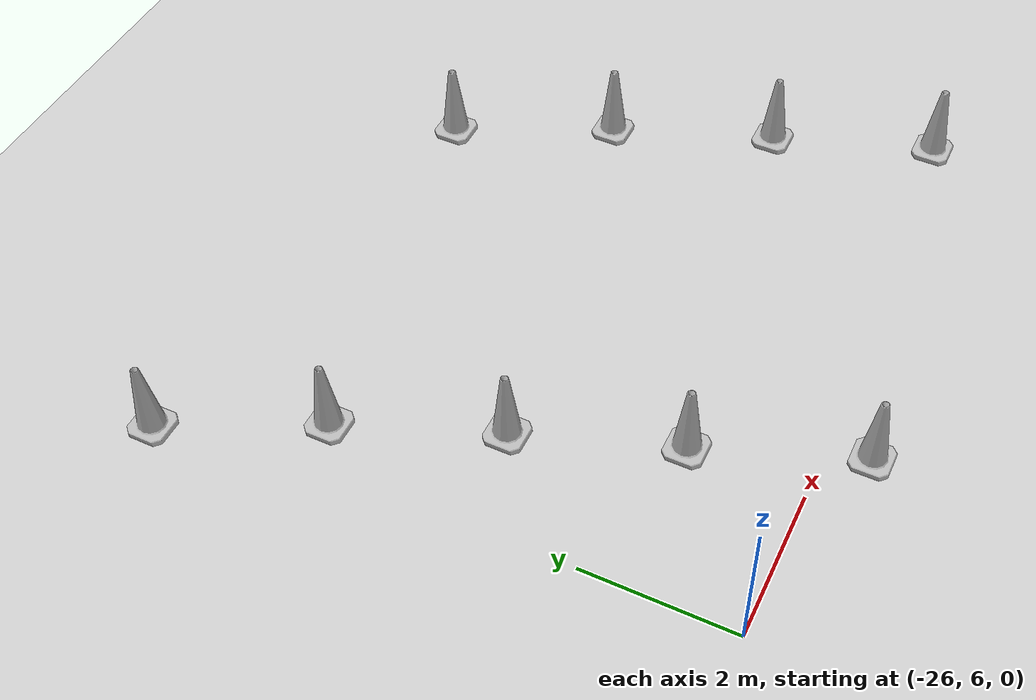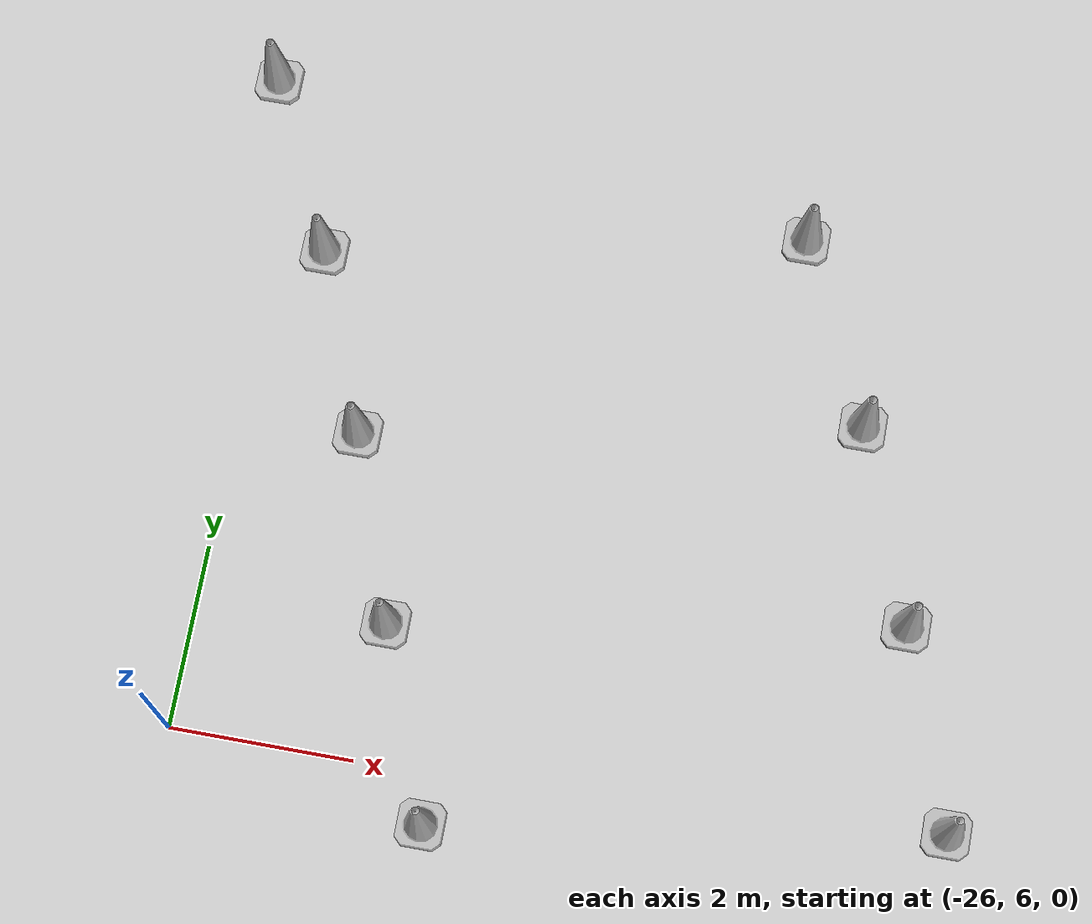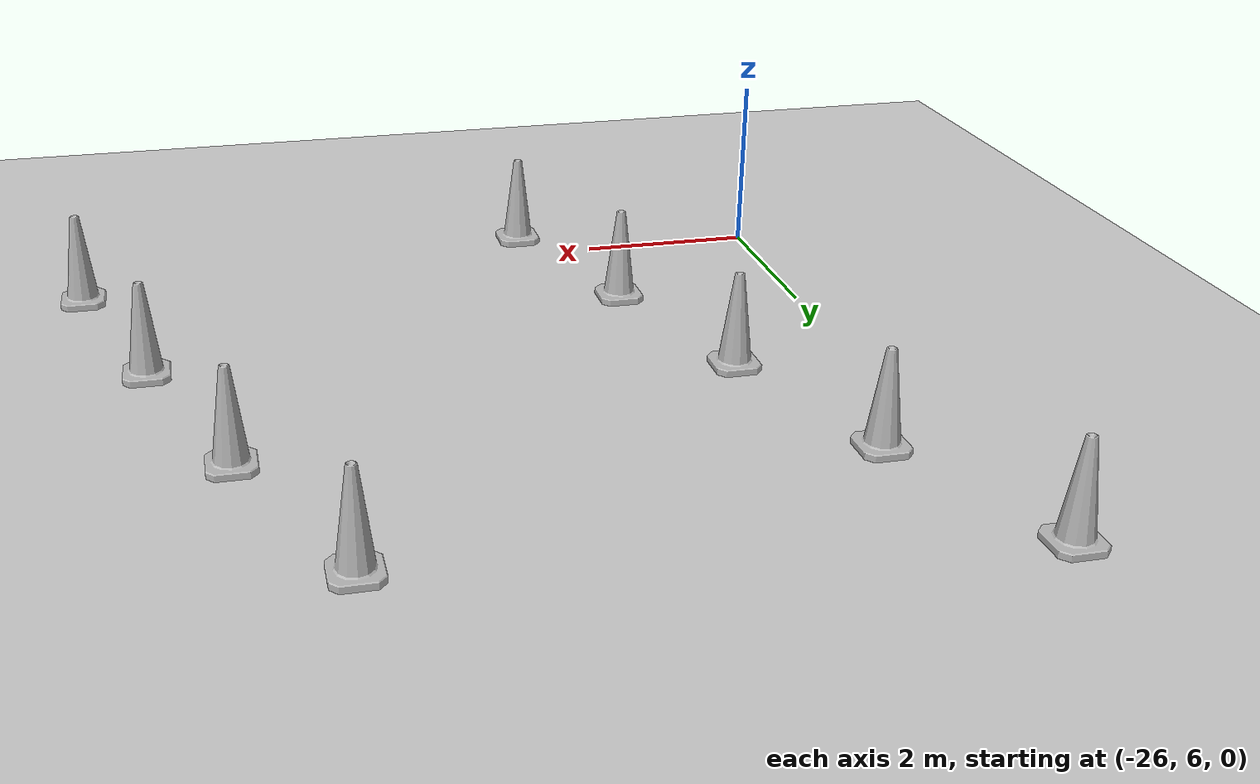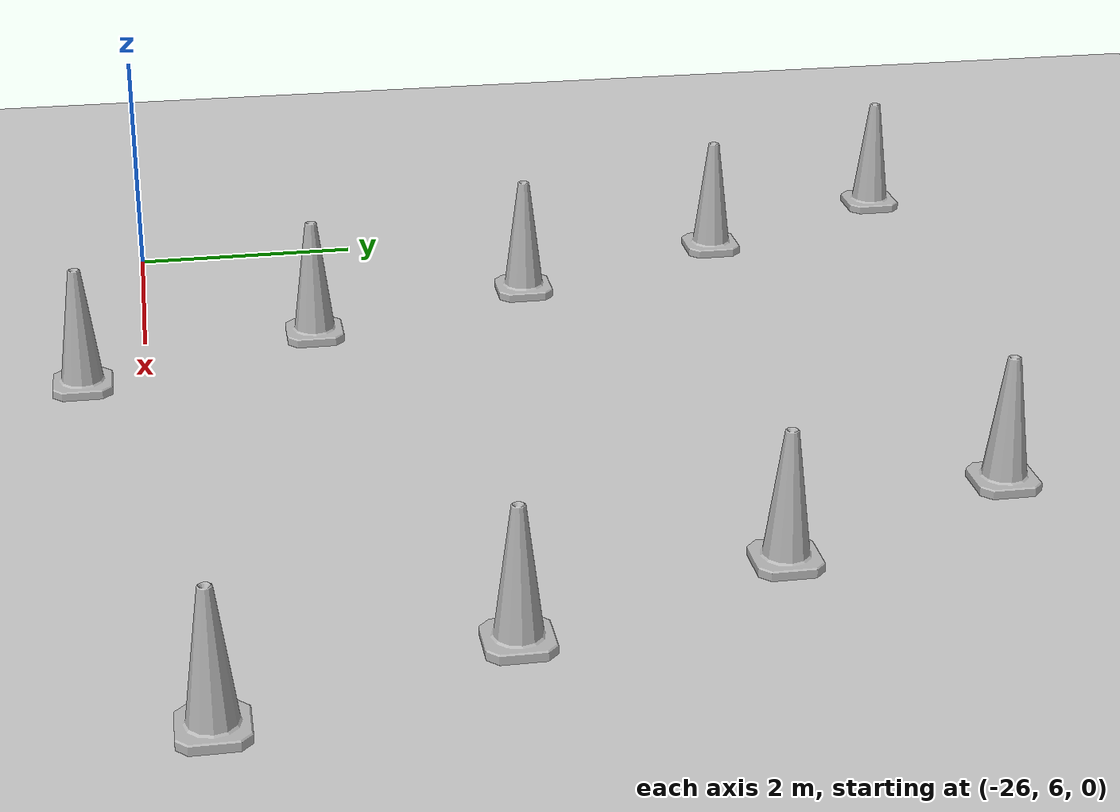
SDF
<sdf version="1.7">
 <world name="default">
  <model name="ground_plane">
   <static>1</static>
   <link name="link">
    <collision name="collision">
     <geometry><plane><normal>0 0 1</normal><size>125 125</size></plane></geometry>
     <surface>
      <contact><collide_bitmask>65535</collide_bitmask></contact>
      <friction><ode><mu>100</mu><mu2>50</mu2></ode></friction>
     </surface>
    </collision>
    <visual name="visual">
     <cast_shadows>0</cast_shadows>
     <geometry><plane><normal>0 0 1</normal><size>125 125</size></plane></geometry>
     <material>
      <script><uri>file://media/materials/scripts/gazebo.material</uri><name>Gazebo/Grey</name></script>
     </material>
    </visual>
   </link>
  </model>
  <model name="Construction Cone 118">
   <link name="link">
    <collision name="collision">
     <geometry>
      <mesh><scale>10 10 10</scale><uri>model://construction_cone/meshes/construction_cone.dae</uri></mesh>
     </geometry>
    </collision>
    <visual name="visual">
     <geometry>
      <mesh><scale>10 10 10</scale><uri>model://construction_cone/meshes/construction_cone.dae</uri></mesh>
     </geometry>
    </visual>
    <inertial>
     <inertia><ixx>1</ixx><ixy>0</ixy><ixz>0</ixz><iyy>1</iyy><iyz>0</iyz><izz>1</izz></inertia>
     <mass>1</mass>
    </inertial>
   </link>
   <pose>-26.382751618808744 13.452855827656052 0 0 0 0</pose>
  </model>
  <model name="Construction Cone 120">
   <link name="link">
    <collision name="collision">
     <geometry>
      <mesh><scale>10 10 10</scale><uri>model://construction_cone/meshes/construction_cone.dae</uri></mesh>
     </geometry>
    </collision>
    <visual name="visual">
     <geometry>
      <mesh><scale>10 10 10</scale><uri>model://construction_cone/meshes/construction_cone.dae</uri></mesh>
     </geometry>
    </visual>
    <inertial>
     <inertia><ixx>1</ixx><ixy>0</ixy><ixz>0</ixz><iyy>1</iyy><iyz>0</iyz><izz>1</izz></inertia>
     <mass>1</mass>
    </inertial>
   </link>
   <pose>-20.19525161880874 12.620355827656049 0 0 0 0</pose>
  </model>
  <model name="Construction Cone 127">
   <link name="link">
    <collision name="collision">
     <geometry>
      <mesh><scale>10 10 10</scale><uri>model://construction_cone/meshes/construction_cone.dae</uri></mesh>
     </geometry>
    </collision>
    <visual name="visual">
     <geometry>
      <mesh><scale>10 10 10</scale><uri>model://construction_cone/meshes/construction_cone.dae</uri></mesh>
     </geometry>
    </visual>
    <inertial>
     <inertia><ixx>1</ixx><ixy>0</ixy><ixz>0</ixz><iyy>1</iyy><iyz>0</iyz><izz>1</izz></inertia>
     <mass>1</mass>
    </inertial>
   </link>
   <pose>-25.46025161880874 11.54035582765605 0 0 0 0</pose>
  </model>
  <model name="Construction Cone 132">
   <link name="link">
    <collision name="collision">
     <geometry>
      <mesh><scale>10 10 10</scale><uri>model://construction_cone/meshes/construction_cone.dae</uri></mesh>
     </geometry>
    </collision>
    <visual name="visual">
     <geometry>
      <mesh><scale>10 10 10</scale><uri>model://construction_cone/meshes/construction_cone.dae</uri></mesh>
     </geometry>
    </visual>
    <inertial>
     <inertia><ixx>1</ixx><ixy>0</ixy><ixz>0</ixz><iyy>1</iyy><iyz>0</iyz><izz>1</izz></inertia>
     <mass>1</mass>
    </inertial>
   </link>
   <pose>-19.25025161880874 10.59535582765605 0 0 0 0</pose>
  </model>
  <model name="Construction Cone 137">
   <link name="link">
    <collision name="collision">
     <geometry>
      <mesh><scale>10 10 10</scale><uri>model://construction_cone/meshes/construction_cone.dae</uri></mesh>
     </geometry>
    </collision>
    <visual name="visual">
     <geometry>
      <mesh><scale>10 10 10</scale><uri>model://construction_cone/meshes/construction_cone.dae</uri></mesh>
     </geometry>
    </visual>
    <inertial>
     <inertia><ixx>1</ixx><ixy>0</ixy><ixz>0</ixz><iyy>1</iyy><iyz>0</iyz><izz>1</izz></inertia>
     <mass>1</mass>
    </inertial>
   </link>
   <pose>-24.67275161880874 9.537855827656053 0 0 0 0</pose>
  </model>
  <model name="Construction Cone 142">
   <link name="link">
    <collision name="collision">
     <geometry>
      <mesh><scale>10 10 10</scale><uri>model://construction_cone/meshes/construction_cone.dae</uri></mesh>
     </geometry>
    </collision>
    <visual name="visual">
     <geometry>
      <mesh><scale>10 10 10</scale><uri>model://construction_cone/meshes/construction_cone.dae</uri></mesh>
     </geometry>
    </visual>
    <inertial>
     <inertia><ixx>1</ixx><ixy>0</ixy><ixz>0</ixz><iyy>1</iyy><iyz>0</iyz><izz>1</izz></inertia>
     <mass>1</mass>
    </inertial>
   </link>
   <pose>-18.453751618808745 8.475855827656048 0 0 0 0</pose>
  </model>
  <model name="Construction Cone 147">
   <link name="link">
    <collision name="collision">
     <geometry>
      <mesh><scale>10 10 10</scale><uri>model://construction_cone/meshes/construction_cone.dae</uri></mesh>
     </geometry>
    </collision>
    <visual name="visual">
     <geometry>
      <mesh><scale>10 10 10</scale><uri>model://construction_cone/meshes/construction_cone.dae</uri></mesh>
     </geometry>
    </visual>
    <inertial>
     <inertia><ixx>1</ixx><ixy>0</ixy><ixz>0</ixz><iyy>1</iyy><iyz>0</iyz><izz>1</izz></inertia>
     <mass>1</mass>
    </inertial>
   </link>
   <pose>-23.95275161880874 7.512855827656047 0 0 0 0</pose>
  </model>
  <model name="Construction Cone 154">
   <link name="link">
    <collision name="collision">
     <geometry>
      <mesh><scale>10 10 10</scale><uri>model://construction_cone/meshes/construction_cone.dae</uri></mesh>
     </geometry>
    </collision>
    <visual name="visual">
     <geometry>
      <mesh><scale>10 10 10</scale><uri>model://construction_cone/meshes/construction_cone.dae</uri></mesh>
     </geometry>
    </visual>
    <inertial>
     <inertia><ixx>1</ixx><ixy>0</ixy><ixz>0</ixz><iyy>1</iyy><iyz>0</iyz><izz>1</izz></inertia>
     <mass>1</mass>
    </inertial>
   </link>
   <pose>-17.714626618808744 6.359730827656051 0 0 0 0</pose>
  </model>
  <model name="Construction Cone 157">
   <link name="link">
    <collision name="collision">
     <geometry>
      <mesh><scale>10 10 10</scale><uri>model://construction_cone/meshes/construction_cone.dae</uri></mesh>
     </geometry>
    </collision>
    <visual name="visual">
     <geometry>
      <mesh><scale>10 10 10</scale><uri>model://construction_cone/meshes/construction_cone.dae</uri></mesh>
     </geometry>
    </visual>
    <inertial>
     <inertia><ixx>1</ixx><ixy>0</ixy><ixz>0</ixz><iyy>1</iyy><iyz>0</iyz><izz>1</izz></inertia>
     <mass>1</mass>
    </inertial>
   </link>
   <pose>-23.16525161880874 5.465355827656047 0 0 0 0</pose>
  </model>
 </world>
</sdf>
